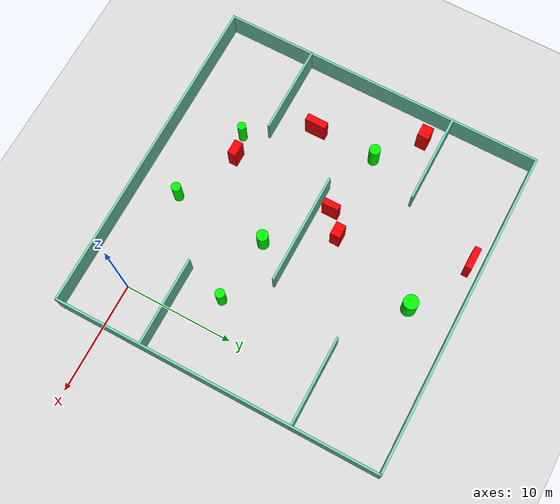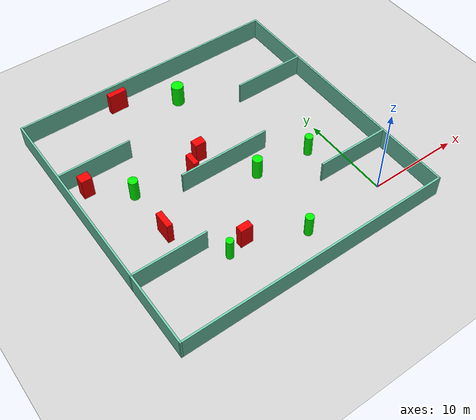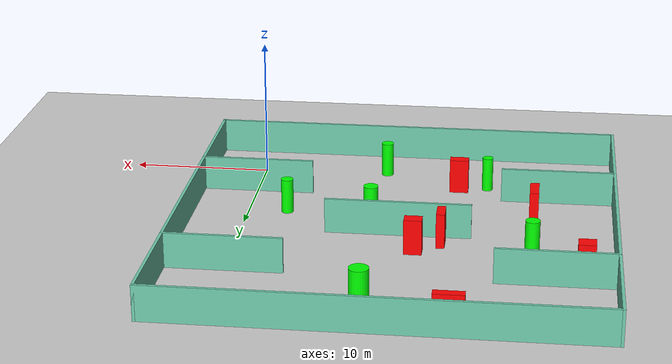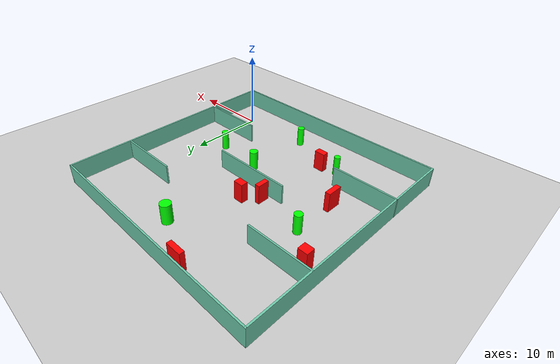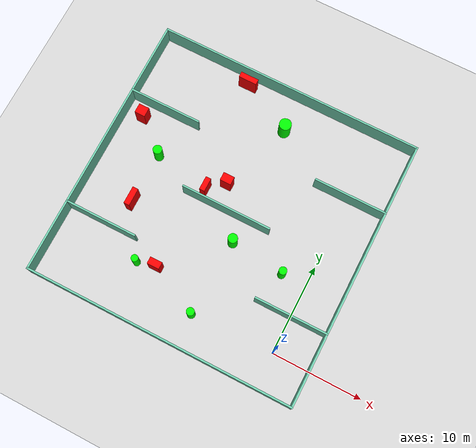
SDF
<sdf version="1.7">
 <world name="default">
  <light name="sun" type="directional">
   <pose>0 0 10 0 -0 0</pose>
   <diffuse>0.8 0.8 0.8 1</diffuse>
   <specular>0.2 0.2 0.2 1</specular>
   <attenuation>
    <range>1000</range>
    <constant>0.9</constant>
    <linear>0.01</linear>
    <quadratic>0.001</quadratic>
   </attenuation>
   <direction>-0.5 0.1 -0.9</direction>
   <spot><inner_angle>0</inner_angle><outer_angle>0</outer_angle><falloff>0</falloff></spot>
  </light>
  <model name="ground_plane">
   <static>1</static>
   <link name="link">
    <collision name="collision">
     <geometry><plane><normal>0 0 1</normal><size>100 100</size></plane></geometry>
     <surface>
      <contact><collide_bitmask>65535</collide_bitmask></contact>
      <friction><ode><mu>100</mu><mu2>50</mu2></ode></friction>
     </surface>
    </collision>
    <visual name="visual">
     <cast_shadows>0</cast_shadows>
     <geometry><plane><normal>0 0 1</normal><size>100 100</size></plane></geometry>
     <material>
      <script><uri>file://media/materials/scripts/gazebo.material</uri><name>Gazebo/Grey</name></script>
     </material>
    </visual>
   </link>
  </model>
  <gravity>0 0 -9.8</gravity>
  <magnetic_field>6e-06 2.3e-05 -4.2e-05</magnetic_field>
  <atmosphere type="adiabatic"/>
  <physics type="ode">
   <max_step_size>0.001</max_step_size>
   <real_time_factor>1</real_time_factor>
   <real_time_update_rate>1000</real_time_update_rate>
  </physics>
  <scene><ambient>0.4 0.4 0.4 1</ambient><background>0.7 0.7 0.7 1</background><shadows>1</shadows></scene>
  <spherical_coordinates>
   <surface_model>EARTH_WGS84</surface_model>
   <latitude_deg>0</latitude_deg>
   <longitude_deg>0</longitude_deg>
   <elevation>0</elevation>
   <heading_deg>0</heading_deg>
  </spherical_coordinates>
  <model name="my_base_walls">
   <link name="Wall_10">
    <collision name="Wall_10_Collision">
     <geometry><box><size>8.2 0.2 2.5</size></box></geometry>
     <pose>0 0 1.25 0 -0 0</pose>
    </collision>
    <visual name="Wall_10_Visual">
     <pose>0 0 1.25 0 -0 0</pose>
     <geometry><box><size>8.2 0.2 2.5</size></box></geometry>
     <material>
      <script><uri>file://media/materials/scripts/gazebo.material</uri><name>Gazebo/Grey</name></script>
      <ambient>0.435294 0.796078 0.67451 1</ambient>
     </material>
     <meta><layer>0</layer></meta>
    </visual>
    <pose>-11 -7 0 0 -0 0</pose>
   </link>
   <link name="Wall_12">
    <collision name="Wall_12_Collision">
     <geometry><box><size>8.2 0.2 2.5</size></box></geometry>
     <pose>0 0 1.25 0 -0 0</pose>
    </collision>
    <visual name="Wall_12_Visual">
     <pose>0 0 1.25 0 -0 0</pose>
     <geometry><box><size>8.2 0.2 2.5</size></box></geometry>
     <material>
      <script><uri>file://media/materials/scripts/gazebo.material</uri><name>Gazebo/Grey</name></script>
      <ambient>0.435294 0.796078 0.67451 1</ambient>
     </material>
     <meta><layer>0</layer></meta>
    </visual>
    <pose>-11 7 0 0 -0 0</pose>
   </link>
   <link name="Wall_14">
    <collision name="Wall_14_Collision">
     <geometry><box><size>8.2 0.2 2.5</size></box></geometry>
     <pose>0 0 1.25 0 -0 0</pose>
    </collision>
    <visual name="Wall_14_Visual">
     <pose>0 0 1.25 0 -0 0</pose>
     <geometry><box><size>8.2 0.2 2.5</size></box></geometry>
     <material>
      <script><uri>file://media/materials/scripts/gazebo.material</uri><name>Gazebo/Grey</name></script>
      <ambient>0.435294 0.796078 0.67451 1</ambient>
     </material>
     <meta><layer>0</layer></meta>
    </visual>
    <pose>11 7 0 0 -0 3.14159</pose>
   </link>
   <link name="Wall_16">
    <collision name="Wall_16_Collision">
     <geometry><box><size>10.2 0.2 2.5</size></box></geometry>
     <pose>0 0 1.25 0 -0 0</pose>
    </collision>
    <visual name="Wall_16_Visual">
     <pose>0 0 1.25 0 -0 0</pose>
     <geometry><box><size>10.2 0.2 2.5</size></box></geometry>
     <material>
      <script><uri>file://media/materials/scripts/gazebo.material</uri><name>Gazebo/Grey</name></script>
      <ambient>0.435294 0.796078 0.67451 1</ambient>
     </material>
     <meta><layer>0</layer></meta>
    </visual>
    <pose>0 0 0 0 -0 3.14159</pose>
   </link>
   <link name="Wall_2">
    <collision name="Wall_2_Collision">
     <geometry><box><size>30.2 0.2 2.5</size></box></geometry>
     <pose>0 0 1.25 0 -0 0</pose>
    </collision>
    <visual name="Wall_2_Visual">
     <pose>0 0 1.25 0 -0 0</pose>
     <geometry><box><size>30.2 0.2 2.5</size></box></geometry>
     <material>
      <script><uri>file://media/materials/scripts/gazebo.material</uri><name>Gazebo/Grey</name></script>
      <ambient>0.435294 0.796078 0.67451 1</ambient>
     </material>
     <meta><layer>0</layer></meta>
    </visual>
    <pose>0 -15 0 0 -0 3.14159</pose>
   </link>
   <link name="Wall_3">
    <collision name="Wall_3_Collision">
     <geometry><box><size>30.2 0.2 2.5</size></box></geometry>
     <pose>0 0 1.25 0 -0 0</pose>
    </collision>
    <visual name="Wall_3_Visual">
     <pose>0 0 1.25 0 -0 0</pose>
     <geometry><box><size>30.2 0.2 2.5</size></box></geometry>
     <material>
      <script><uri>file://media/materials/scripts/gazebo.material</uri><name>Gazebo/Grey</name></script>
      <ambient>0.435294 0.796078 0.67451 1</ambient>
     </material>
     <meta><layer>0</layer></meta>
    </visual>
    <pose>-15 0 0 0 -0 1.5708</pose>
   </link>
   <link name="Wall_4">
    <collision name="Wall_4_Collision">
     <geometry><box><size>30.2 0.2 2.5</size></box></geometry>
     <pose>0 0 1.25 0 -0 0</pose>
    </collision>
    <visual name="Wall_4_Visual">
     <pose>0 0 1.25 0 -0 0</pose>
     <geometry><box><size>30.2 0.2 2.5</size></box></geometry>
     <material>
      <script><uri>file://media/materials/scripts/gazebo.material</uri><name>Gazebo/Grey</name></script>
      <ambient>0.435294 0.796078 0.67451 1</ambient>
     </material>
     <meta><layer>0</layer></meta>
    </visual>
    <pose>0 15 0 0 -0 0</pose>
   </link>
   <link name="Wall_6">
    <collision name="Wall_6_Collision">
     <geometry><box><size>30.2 0.2 2.5</size></box></geometry>
     <pose>0 0 1.25 0 -0 0</pose>
    </collision>
    <visual name="Wall_6_Visual">
     <pose>0 0 1.25 0 -0 0</pose>
     <geometry><box><size>30.2 0.2 2.5</size></box></geometry>
     <material>
      <script><uri>file://media/materials/scripts/gazebo.material</uri><name>Gazebo/Grey</name></script>
      <ambient>0.435294 0.796078 0.67451 1</ambient>
     </material>
     <meta><layer>0</layer></meta>
    </visual>
    <pose>15 0 0 0 -0 1.5708</pose>
   </link>
   <link name="Wall_8">
    <collision name="Wall_8_Collision">
     <geometry><box><size>8.2 0.2 2.5</size></box></geometry>
     <pose>0 0 1.25 0 -0 0</pose>
    </collision>
    <visual name="Wall_8_Visual">
     <pose>0 0 1.25 0 -0 0</pose>
     <geometry><box><size>8.2 0.2 2.5</size></box></geometry>
     <material>
      <script><uri>file://media/materials/scripts/gazebo.material</uri><name>Gazebo/Grey</name></script>
      <ambient>0.435294 0.796078 0.67451 1</ambient>
     </material>
     <meta><layer>0</layer></meta>
    </visual>
    <pose>11 -7 0 0 -0 3.14159</pose>
   </link>
   <static>1</static>
   <pose>-11 11 0 0 -0 0</pose>
  </model>
  <model name="cylinder1">
   <static>1</static>
   <link name="link">
    <inertial>
     <mass>1</mass>
     <inertia><ixx>0.5</ixx><ixy>0</ixy><ixz>0</ixz><iyy>0.5</iyy><iyz>0</iyz><izz>1</izz></inertia>
    </inertial>
    <collision name="collision">
     <geometry><cylinder><radius>0.3870499478025011</radius><length>2.5</length></cylinder></geometry>
    </collision>
    <visual name="visual">
     <geometry><cylinder><radius>0.3870499478025011</radius><length>2.5</length></cylinder></geometry>
     <material>
      <ambient>0 1 0 1</ambient>
      <diffuse>0 1 0 1</diffuse>
      <specular>0.1 0.1 0.1 1</specular>
      <emissive>0 0 0 0</emissive>
     </material>
    </visual>
   </link>
   <pose>-16.810738834137215 1.9186144760747883 1.25 0 0 0</pose>
  </model>
  <model name="cylinder2">
   <static>1</static>
   <link name="link">
    <inertial>
     <mass>1</mass>
     <inertia><ixx>0.5</ixx><ixy>0</ixy><ixz>0</ixz><iyy>0.5</iyy><iyz>0</iyz><izz>1</izz></inertia>
    </inertial>
    <collision name="collision">
     <geometry><cylinder><radius>0.5023879401281892</radius><length>2.5</length></cylinder></geometry>
    </collision>
    <visual name="visual">
     <geometry><cylinder><radius>0.5023879401281892</radius><length>2.5</length></cylinder></geometry>
     <material>
      <ambient>0 1 0 1</ambient>
      <diffuse>0 1 0 1</diffuse>
      <specular>0.1 0.1 0.1 1</specular>
      <emissive>0 0 0 0</emissive>
     </material>
    </visual>
   </link>
   <pose>-20.322655632785125 13.241329083848331 1.25 0 0 0</pose>
  </model>
  <model name="cylinder3">
   <static>1</static>
   <link name="link">
    <inertial>
     <mass>1</mass>
     <inertia><ixx>0.5</ixx><ixy>0</ixy><ixz>0</ixz><iyy>0.5</iyy><iyz>0</iyz><izz>1</izz></inertia>
    </inertial>
    <collision name="collision">
     <geometry><cylinder><radius>0.5264598308297131</radius><length>2.5</length></cylinder></geometry>
    </collision>
    <visual name="visual">
     <geometry><cylinder><radius>0.5264598308297131</radius><length>2.5</length></cylinder></geometry>
     <material>
      <ambient>0 1 0 1</ambient>
      <diffuse>0 1 0 1</diffuse>
      <specular>0.1 0.1 0.1 1</specular>
      <emissive>0 0 0 0</emissive>
     </material>
    </visual>
   </link>
   <pose>-8.844212928077795 8.366150951681139 1.25 0 0 0</pose>
  </model>
  <model name="cylinder4">
   <static>1</static>
   <link name="link">
    <inertial>
     <mass>1</mass>
     <inertia><ixx>0.5</ixx><ixy>0</ixy><ixz>0</ixz><iyy>0.5</iyy><iyz>0</iyz><izz>1</izz></inertia>
    </inertial>
    <collision name="collision">
     <geometry><cylinder><radius>0.6706007404423061</radius><length>2.5</length></cylinder></geometry>
    </collision>
    <visual name="visual">
     <geometry><cylinder><radius>0.6706007404423061</radius><length>2.5</length></cylinder></geometry>
     <material>
      <ambient>0 1 0 1</ambient>
      <diffuse>0 1 0 1</diffuse>
      <specular>0.1 0.1 0.1 1</specular>
      <emissive>0 0 0 0</emissive>
     </material>
    </visual>
   </link>
   <pose>-9.565777203228063 21.993079933620688 1.25 0 0 0</pose>
  </model>
  <model name="cylinder5">
   <static>1</static>
   <link name="link">
    <inertial>
     <mass>1</mass>
     <inertia><ixx>0.5</ixx><ixy>0</ixy><ixz>0</ixz><iyy>0.5</iyy><iyz>0</iyz><izz>1</izz></inertia>
    </inertial>
    <collision name="collision">
     <geometry><cylinder><radius>0.43197771475596564</radius><length>2.5</length></cylinder></geometry>
    </collision>
    <visual name="visual">
     <geometry><cylinder><radius>0.43197771475596564</radius><length>2.5</length></cylinder></geometry>
     <material>
      <ambient>0 1 0 1</ambient>
      <diffuse>0 1 0 1</diffuse>
      <specular>0.1 0.1 0.1 1</specular>
      <emissive>0 0 0 0</emissive>
     </material>
    </visual>
   </link>
   <pose>-2.7725538780937775 7.7088271149926655 1.25 0 0 0</pose>
  </model>
  <model name="cylinder6">
   <static>1</static>
   <link name="link">
    <inertial>
     <mass>1</mass>
     <inertia><ixx>0.5</ixx><ixy>0</ixy><ixz>0</ixz><iyy>0.5</iyy><iyz>0</iyz><izz>1</izz></inertia>
    </inertial>
    <collision name="collision">
     <geometry><cylinder><radius>0.4354352690764257</radius><length>2.5</length></cylinder></geometry>
    </collision>
    <visual name="visual">
     <geometry><cylinder><radius>0.4354352690764257</radius><length>2.5</length></cylinder></geometry>
     <material>
      <ambient>0 1 0 1</ambient>
      <diffuse>0 1 0 1</diffuse>
      <specular>0.1 0.1 0.1 1</specular>
      <emissive>0 0 0 0</emissive>
     </material>
    </visual>
   </link>
   <pose>-9.191247393293043 -0.2783095771480655 1.25 0 0 0</pose>
  </model>
  <model name="box1">
   <static>1</static>
   <link name="link">
    <inertial>
     <mass>1</mass>
     <inertia><ixx>0.083</ixx><ixy>0</ixy><ixz>0</ixz><iyy>0.083</iyy><iyz>0</iyz><izz>0.083</izz></inertia>
    </inertial>
    <collision name="collision">
     <geometry><box><size>1.2371516603402672 0.9158356571538732 2.5</size></box></geometry>
    </collision>
    <visual name="visual">
     <geometry><box><size>1.2371516603402672 0.9158356571538732 2.5</size></box></geometry>
     <material>
      <ambient>1 0 0 1</ambient>
      <diffuse>1 0 0 1</diffuse>
      <specular>0.1 0.1 0.1 1</specular>
      <emissive>0 0 0 0</emissive>
     </material>
    </visual>
    <sensor name="my_contact" type="contact">
     <contact><collision>box_collision</collision><topic>__default_topic__</topic></contact>
    </sensor>
   </link>
   <pose>-12.304309210598182 13.782211964009992 1.25 0 0 0</pose>
  </model>
  <model name="box2">
   <static>1</static>
   <link name="link">
    <inertial>
     <mass>1</mass>
     <inertia><ixx>0.083</ixx><ixy>0</ixy><ixz>0</ixz><iyy>0.083</iyy><iyz>0</iyz><izz>0.083</izz></inertia>
    </inertial>
    <collision name="collision">
     <geometry><box><size>0.594169349537955 1.52097640951866 2.5</size></box></geometry>
    </collision>
    <visual name="visual">
     <geometry><box><size>0.594169349537955 1.52097640951866 2.5</size></box></geometry>
     <material>
      <ambient>1 0 0 1</ambient>
      <diffuse>1 0 0 1</diffuse>
      <specular>0.1 0.1 0.1 1</specular>
      <emissive>0 0 0 0</emissive>
     </material>
    </visual>
    <sensor name="my_contact" type="contact">
     <contact><collision>box_collision</collision><topic>__default_topic__</topic></contact>
    </sensor>
   </link>
   <pose>-14.083600707899393 12.216847064476275 1.25 0 0 0</pose>
  </model>
  <model name="box3">
   <static>1</static>
   <link name="link">
    <inertial>
     <mass>1</mass>
     <inertia><ixx>0.083</ixx><ixy>0</ixy><ixz>0</ixz><iyy>0.083</iyy><iyz>0</iyz><izz>0.083</izz></inertia>
    </inertial>
    <collision name="collision">
     <geometry><box><size>0.6388422269081406 1.9603057288663353 2.5</size></box></geometry>
    </collision>
    <visual name="visual">
     <geometry><box><size>0.6388422269081406 1.9603057288663353 2.5</size></box></geometry>
     <material>
      <ambient>1 0 0 1</ambient>
      <diffuse>1 0 0 1</diffuse>
      <specular>0.1 0.1 0.1 1</specular>
      <emissive>0 0 0 0</emissive>
     </material>
    </visual>
    <sensor name="my_contact" type="contact">
     <contact><collision>box_collision</collision><topic>__default_topic__</topic></contact>
    </sensor>
   </link>
   <pose>-20.329771882039246 7.497628400501078 1.25 0 0 0</pose>
  </model>
  <model name="box4">
   <static>1</static>
   <link name="link">
    <inertial>
     <mass>1</mass>
     <inertia><ixx>0.083</ixx><ixy>0</ixy><ixz>0</ixz><iyy>0.083</iyy><iyz>0</iyz><izz>0.083</izz></inertia>
    </inertial>
    <collision name="collision">
     <geometry><box><size>1.178326365637571 1.0594814815144014 2.5</size></box></geometry>
    </collision>
    <visual name="visual">
     <geometry><box><size>1.178326365637571 1.0594814815144014 2.5</size></box></geometry>
     <material>
      <ambient>1 0 0 1</ambient>
      <diffuse>1 0 0 1</diffuse>
      <specular>0.1 0.1 0.1 1</specular>
      <emissive>0 0 0 0</emissive>
     </material>
    </visual>
    <sensor name="my_contact" type="contact">
     <contact><collision>box_collision</collision><topic>__default_topic__</topic></contact>
    </sensor>
   </link>
   <pose>-23.932470475073117 16.381921733685203 1.25 0 0 0</pose>
  </model>
  <model name="box5">
   <static>1</static>
   <link name="link">
    <inertial>
     <mass>1</mass>
     <inertia><ixx>0.083</ixx><ixy>0</ixy><ixz>0</ixz><iyy>0.083</iyy><iyz>0</iyz><izz>0.083</izz></inertia>
    </inertial>
    <collision name="collision">
     <geometry><box><size>2.0454713135256295 0.6143373556549594 2.5</size></box></geometry>
    </collision>
    <visual name="visual">
     <geometry><box><size>2.0454713135256295 0.6143373556549594 2.5</size></box></geometry>
     <material>
      <ambient>1 0 0 1</ambient>
      <diffuse>1 0 0 1</diffuse>
      <specular>0.1 0.1 0.1 1</specular>
      <emissive>0 0 0 0</emissive>
     </material>
    </visual>
    <sensor name="my_contact" type="contact">
     <contact><collision>box_collision</collision><topic>__default_topic__</topic></contact>
    </sensor>
   </link>
   <pose>-15.441420945172583 24.927094282930653 1.25 0 0 0</pose>
  </model>
  <model name="box6">
   <static>1</static>
   <link name="link">
    <inertial>
     <mass>1</mass>
     <inertia><ixx>0.083</ixx><ixy>0</ixy><ixz>0</ixz><iyy>0.083</iyy><iyz>0</iyz><izz>0.083</izz></inertia>
    </inertial>
    <collision name="collision">
     <geometry><box><size>1.354454510880419 0.7814467324015137 2.5</size></box></geometry>
    </collision>
    <visual name="visual">
     <geometry><box><size>1.354454510880419 0.7814467324015137 2.5</size></box></geometry>
     <material>
      <ambient>1 0 0 1</ambient>
      <diffuse>1 0 0 1</diffuse>
      <specular>0.1 0.1 0.1 1</specular>
      <emissive>0 0 0 0</emissive>
     </material>
    </visual>
    <sensor name="my_contact" type="contact">
     <contact><collision>box_collision</collision><topic>__default_topic__</topic></contact>
    </sensor>
   </link>
   <pose>-14.749716401513886 2.4200822384752776 1.25 0 0 0</pose>
  </model>
 </world>
</sdf>
